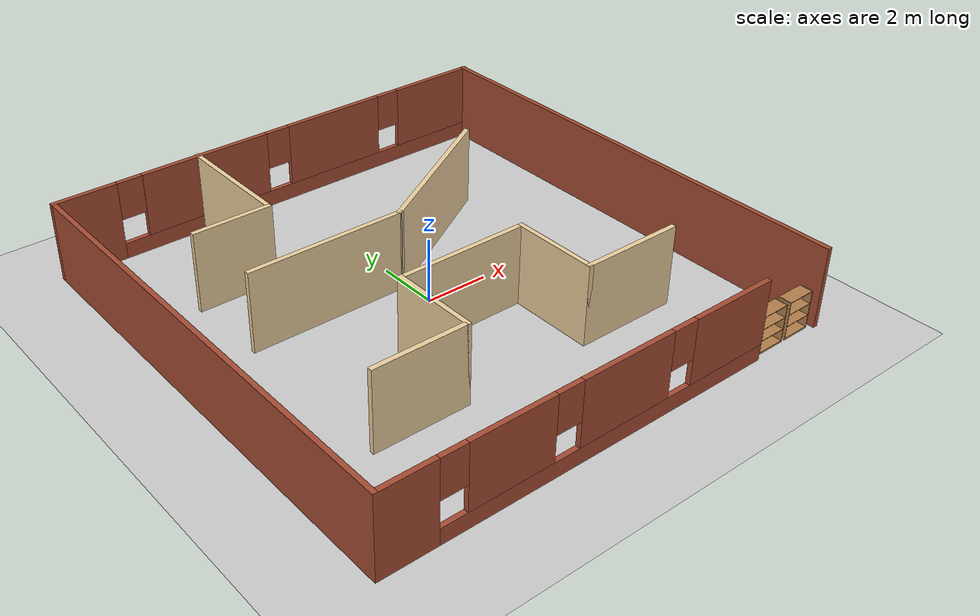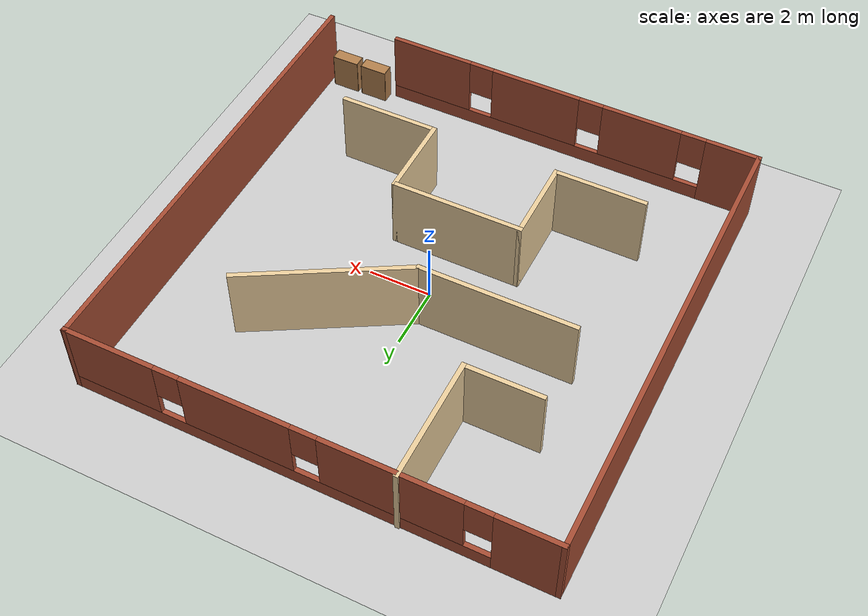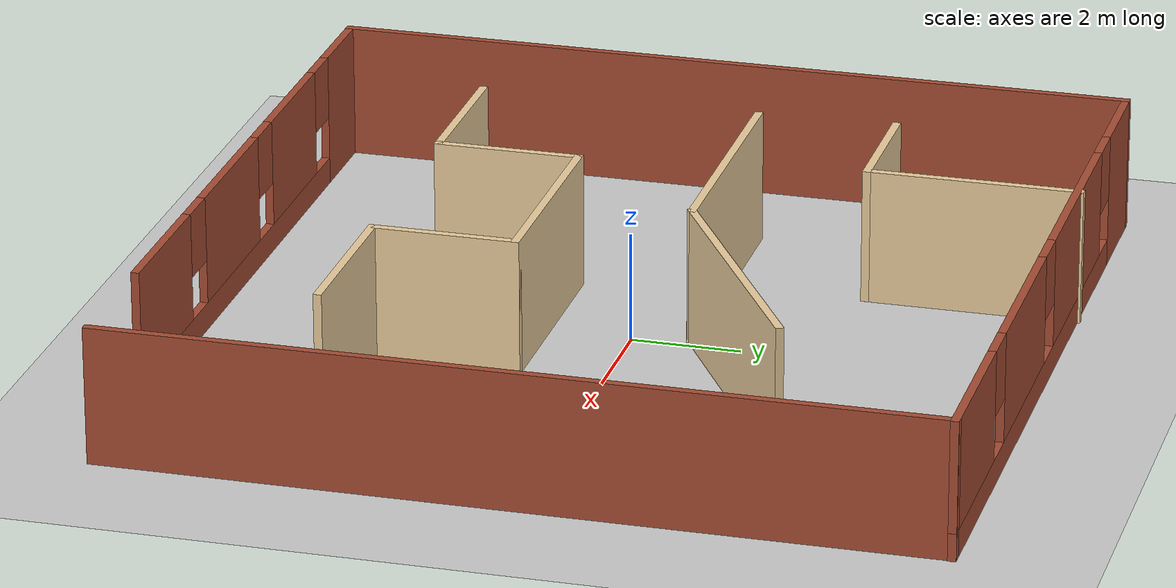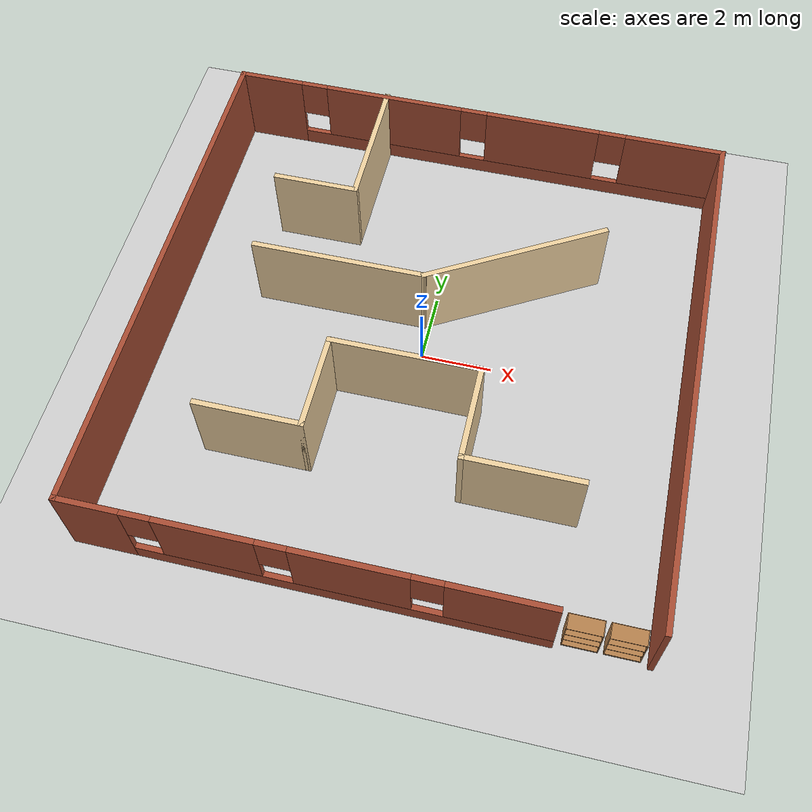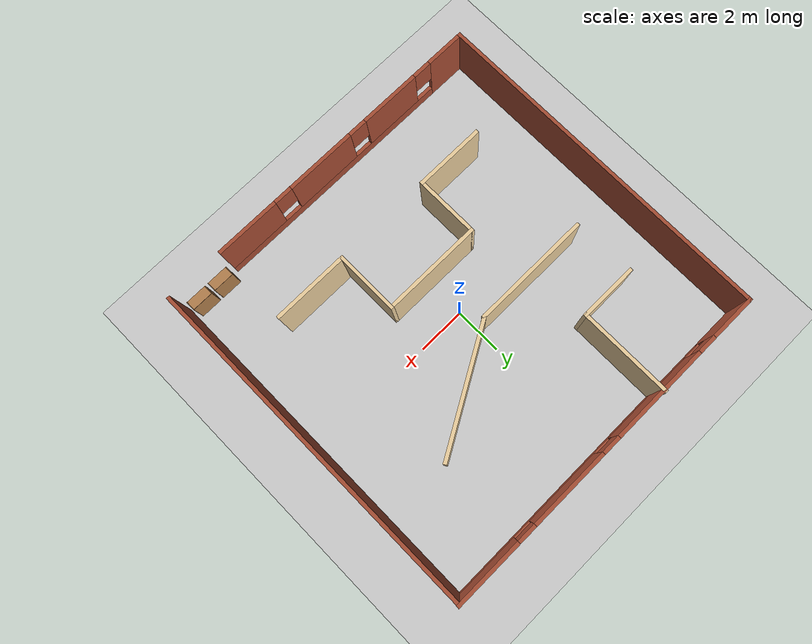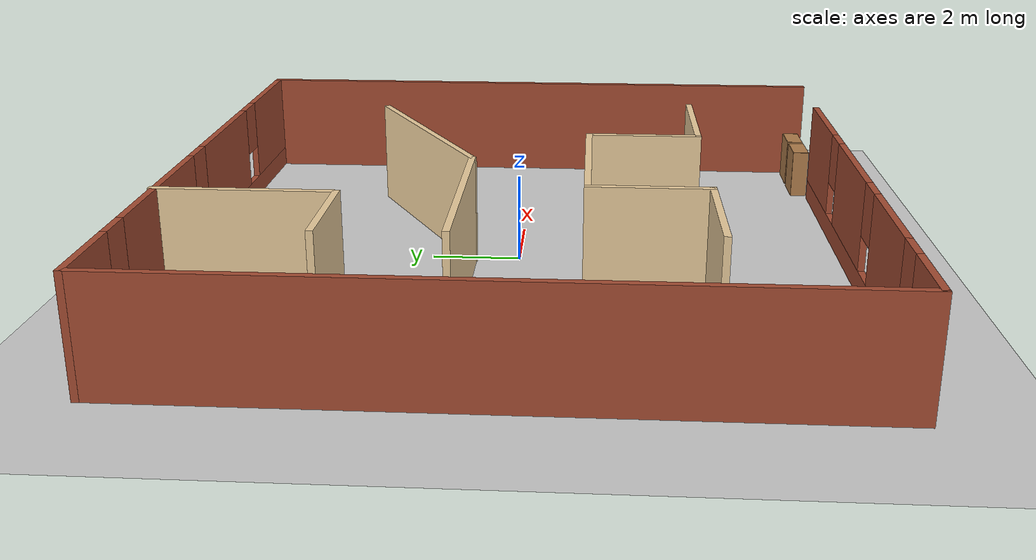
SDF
<sdf version="1.7">
 <world name="default">
  <model name="ground_plane">
   <static>1</static>
   <link name="link">
    <collision name="collision">
     <geometry><plane><normal>0 0 1</normal><size>100 100</size></plane></geometry>
     <surface>
      <contact><collide_bitmask>65535</collide_bitmask></contact>
      <friction><ode><mu>100</mu><mu2>50</mu2></ode></friction>
     </surface>
    </collision>
    <visual name="visual">
     <cast_shadows>0</cast_shadows>
     <geometry><plane><normal>0 0 1</normal><size>100 100</size></plane></geometry>
     <material>
      <script><uri>file://media/materials/scripts/gazebo.material</uri><name>Gazebo/Grey</name></script>
     </material>
    </visual>
   </link>
  </model>
  <model name="bookshelf">
   <static>1</static>
   <link name="link">
    <inertial><mass>1</mass></inertial>
    <collision name="back">
     <pose>0 0.005 0.6 0 -0 0</pose>
     <geometry><box><size>0.9 0.01 1.2</size></box></geometry>
    </collision>
    <visual name="visual1">
     <pose>0 0.005 0.6 0 -0 0</pose>
     <geometry><box><size>0.9 0.01 1.2</size></box></geometry>
     <material>
      <script><uri>file://media/materials/scripts/gazebo.material</uri><name>Gazebo/Wood</name></script>
     </material>
    </visual>
    <collision name="left_side">
     <pose>0.45 -0.195 0.6 0 -0 0</pose>
     <geometry><box><size>0.02 0.4 1.2</size></box></geometry>
    </collision>
    <visual name="visual2">
     <pose>0.45 -0.195 0.6 0 -0 0</pose>
     <geometry><box><size>0.02 0.4 1.2</size></box></geometry>
     <material>
      <script><uri>file://media/materials/scripts/gazebo.material</uri><name>Gazebo/Wood</name></script>
     </material>
    </visual>
    <collision name="right_side">
     <pose>-0.45 -0.195 0.6 0 -0 0</pose>
     <geometry><box><size>0.02 0.4 1.2</size></box></geometry>
    </collision>
    <visual name="visual3">
     <pose>-0.45 -0.195 0.6 0 -0 0</pose>
     <geometry><box><size>0.02 0.4 1.2</size></box></geometry>
     <material>
      <script><uri>file://media/materials/scripts/gazebo.material</uri><name>Gazebo/Wood</name></script>
     </material>
    </visual>
    <collision name="bottom">
     <pose>0 -0.195 0.03 0 -0 0</pose>
     <geometry><box><size>0.88 0.4 0.06</size></box></geometry>
    </collision>
    <visual name="visual4">
     <pose>0 -0.195 0.03 0 -0 0</pose>
     <geometry><box><size>0.88 0.4 0.06</size></box></geometry>
     <material>
      <script><uri>file://media/materials/scripts/gazebo.material</uri><name>Gazebo/Wood</name></script>
     </material>
    </visual>
    <collision name="top">
     <pose>0 -0.195 1.19 0 -0 0</pose>
     <geometry><box><size>0.88 0.4 0.02</size></box></geometry>
    </collision>
    <visual name="visual5">
     <pose>0 -0.195 1.19 0 -0 0</pose>
     <geometry><box><size>0.88 0.4 0.02</size></box></geometry>
     <material>
      <script><uri>file://media/materials/scripts/gazebo.material</uri><name>Gazebo/Wood</name></script>
     </material>
    </visual>
    <collision name="low_shelf">
     <pose>0 -0.195 0.43 0 -0 0</pose>
     <geometry><box><size>0.88 0.4 0.02</size></box></geometry>
    </collision>
    <visual name="visual6">
     <pose>0 -0.195 0.43 0 -0 0</pose>
     <geometry><box><size>0.88 0.4 0.02</size></box></geometry>
     <material>
      <script><uri>file://media/materials/scripts/gazebo.material</uri><name>Gazebo/Wood</name></script>
     </material>
    </visual>
    <collision name="high_shelf">
     <pose>0 -0.195 0.8 0 -0 0</pose>
     <geometry><box><size>0.88 0.4 0.02</size></box></geometry>
    </collision>
    <visual name="visual7">
     <pose>0 -0.195 0.8 0 -0 0</pose>
     <geometry><box><size>0.88 0.4 0.02</size></box></geometry>
     <material>
      <script><uri>file://media/materials/scripts/gazebo.material</uri><name>Gazebo/Wood</name></script>
     </material>
    </visual>
   </link>
   <pose>5.65 -7 0 0 -0 0</pose>
  </model>
  <model name="bookshelf_0">
   <static>1</static>
   <link name="link">
    <inertial><mass>1</mass></inertial>
    <collision name="back">
     <pose>0 0.005 0.6 0 -0 0</pose>
     <geometry><box><size>0.9 0.01 1.2</size></box></geometry>
    </collision>
    <visual name="visual1">
     <pose>0 0.005 0.6 0 -0 0</pose>
     <geometry><box><size>0.9 0.01 1.2</size></box></geometry>
     <material>
      <script><uri>file://media/materials/scripts/gazebo.material</uri><name>Gazebo/Wood</name></script>
     </material>
    </visual>
    <collision name="left_side">
     <pose>0.45 -0.195 0.6 0 -0 0</pose>
     <geometry><box><size>0.02 0.4 1.2</size></box></geometry>
    </collision>
    <visual name="visual2">
     <pose>0.45 -0.195 0.6 0 -0 0</pose>
     <geometry><box><size>0.02 0.4 1.2</size></box></geometry>
     <material>
      <script><uri>file://media/materials/scripts/gazebo.material</uri><name>Gazebo/Wood</name></script>
     </material>
    </visual>
    <collision name="right_side">
     <pose>-0.45 -0.195 0.6 0 -0 0</pose>
     <geometry><box><size>0.02 0.4 1.2</size></box></geometry>
    </collision>
    <visual name="visual3">
     <pose>-0.45 -0.195 0.6 0 -0 0</pose>
     <geometry><box><size>0.02 0.4 1.2</size></box></geometry>
     <material>
      <script><uri>file://media/materials/scripts/gazebo.material</uri><name>Gazebo/Wood</name></script>
     </material>
    </visual>
    <collision name="bottom">
     <pose>0 -0.195 0.03 0 -0 0</pose>
     <geometry><box><size>0.88 0.4 0.06</size></box></geometry>
    </collision>
    <visual name="visual4">
     <pose>0 -0.195 0.03 0 -0 0</pose>
     <geometry><box><size>0.88 0.4 0.06</size></box></geometry>
     <material>
      <script><uri>file://media/materials/scripts/gazebo.material</uri><name>Gazebo/Wood</name></script>
     </material>
    </visual>
    <collision name="top">
     <pose>0 -0.195 1.19 0 -0 0</pose>
     <geometry><box><size>0.88 0.4 0.02</size></box></geometry>
    </collision>
    <visual name="visual5">
     <pose>0 -0.195 1.19 0 -0 0</pose>
     <geometry><box><size>0.88 0.4 0.02</size></box></geometry>
     <material>
      <script><uri>file://media/materials/scripts/gazebo.material</uri><name>Gazebo/Wood</name></script>
     </material>
    </visual>
    <collision name="low_shelf">
     <pose>0 -0.195 0.43 0 -0 0</pose>
     <geometry><box><size>0.88 0.4 0.02</size></box></geometry>
    </collision>
    <visual name="visual6">
     <pose>0 -0.195 0.43 0 -0 0</pose>
     <geometry><box><size>0.88 0.4 0.02</size></box></geometry>
     <material>
      <script><uri>file://media/materials/scripts/gazebo.material</uri><name>Gazebo/Wood</name></script>
     </material>
    </visual>
    <collision name="high_shelf">
     <pose>0 -0.195 0.8 0 -0 0</pose>
     <geometry><box><size>0.88 0.4 0.02</size></box></geometry>
    </collision>
    <visual name="visual7">
     <pose>0 -0.195 0.8 0 -0 0</pose>
     <geometry><box><size>0.88 0.4 0.02</size></box></geometry>
     <material>
      <script><uri>file://media/materials/scripts/gazebo.material</uri><name>Gazebo/Wood</name></script>
     </material>
    </visual>
   </link>
   <pose>6.7 -7 0 0 -0 0</pose>
  </model>
  <model name="gMaze4">
   <link name="Wall_0">
    <pose>0 7.40084 0 0 -0 0</pose>
    <visual name="Wall_0_Visual_0">
     <pose>-6.50945 0 1.25 0 -0 0</pose>
     <geometry><box><size>1.98109 0.15 2.5</size></box></geometry>
     <material>
      <script><uri>file://media/materials/scripts/gazebo.material</uri><name>Gazebo/Bricks</name></script>
      <ambient>1 1 1 1</ambient>
     </material>
     <meta><layer>0</layer></meta>
    </visual>
    <collision name="Wall_0_Collision_0">
     <geometry><box><size>1.98109 0.15 2.5</size></box></geometry>
     <pose>-6.50945 0 1.25 0 -0 0</pose>
    </collision>
    <visual name="Wall_0_Visual_1">
     <pose>0.990545 0 0.25 0 -0 0</pose>
     <geometry><box><size>13.0189 0.15 0.5</size></box></geometry>
     <material>
      <script><uri>file://media/materials/scripts/gazebo.material</uri><name>Gazebo/Bricks</name></script>
      <ambient>1 1 1 1</ambient>
     </material>
     <meta><layer>0</layer></meta>
    </visual>
    <collision name="Wall_0_Collision_1">
     <geometry><box><size>13.0189 0.15 0.5</size></box></geometry>
     <pose>0.990545 0 0.25 0 -0 0</pose>
    </collision>
    <visual name="Wall_0_Visual_2">
     <pose>-2.60363 0 1.5 0 -0 0</pose>
     <geometry><box><size>4.23056 0.15 2</size></box></geometry>
     <material>
      <script><uri>file://media/materials/scripts/gazebo.material</uri><name>Gazebo/Bricks</name></script>
      <ambient>1 1 1 1</ambient>
     </material>
     <meta><layer>0</layer></meta>
    </visual>
    <collision name="Wall_0_Collision_2">
     <geometry><box><size>4.23056 0.15 2</size></box></geometry>
     <pose>-2.60363 0 1.5 0 -0 0</pose>
    </collision>
    <visual name="Wall_0_Visual_3">
     <pose>2.02238 0 1.5 0 -0 0</pose>
     <geometry><box><size>3.42145 0.15 2</size></box></geometry>
     <material>
      <script><uri>file://media/materials/scripts/gazebo.material</uri><name>Gazebo/Bricks</name></script>
      <ambient>1 1 1 1</ambient>
     </material>
     <meta><layer>0</layer></meta>
    </visual>
    <collision name="Wall_0_Collision_3">
     <geometry><box><size>3.42145 0.15 2</size></box></geometry>
     <pose>2.02238 0 1.5 0 -0 0</pose>
    </collision>
    <visual name="Wall_0_Visual_4">
     <pose>6.01655 0 1.5 0 -0 0</pose>
     <geometry><box><size>2.9669 0.15 2</size></box></geometry>
     <material>
      <script><uri>file://media/materials/scripts/gazebo.material</uri><name>Gazebo/Bricks</name></script>
      <ambient>1 1 1 1</ambient>
     </material>
     <meta><layer>0</layer></meta>
    </visual>
    <collision name="Wall_0_Collision_4">
     <geometry><box><size>2.9669 0.15 2</size></box></geometry>
     <pose>6.01655 0 1.5 0 -0 0</pose>
    </collision>
    <visual name="Wall_0_Visual_5">
     <pose>-5.11891 0 1.9 0 -0 0</pose>
     <geometry><box><size>0.8 0.15 1.2</size></box></geometry>
     <material>
      <script><uri>file://media/materials/scripts/gazebo.material</uri><name>Gazebo/Bricks</name></script>
      <ambient>1 1 1 1</ambient>
     </material>
     <meta><layer>0</layer></meta>
    </visual>
    <collision name="Wall_0_Collision_5">
     <geometry><box><size>0.8 0.15 1.2</size></box></geometry>
     <pose>-5.11891 0 1.9 0 -0 0</pose>
    </collision>
    <visual name="Wall_0_Visual_6">
     <pose>-0.088347 0 1.9 0 -0 0</pose>
     <geometry><box><size>0.8 0.15 1.2</size></box></geometry>
     <material>
      <script><uri>file://media/materials/scripts/gazebo.material</uri><name>Gazebo/Bricks</name></script>
      <ambient>1 1 1 1</ambient>
     </material>
     <meta><layer>0</layer></meta>
    </visual>
    <collision name="Wall_0_Collision_6">
     <geometry><box><size>0.8 0.15 1.2</size></box></geometry>
     <pose>-0.088347 0 1.9 0 -0 0</pose>
    </collision>
    <visual name="Wall_0_Visual_7">
     <pose>4.1331 0 1.9 0 -0 0</pose>
     <geometry><box><size>0.8 0.15 1.2</size></box></geometry>
     <material>
      <script><uri>file://media/materials/scripts/gazebo.material</uri><name>Gazebo/Bricks</name></script>
      <ambient>1 1 1 1</ambient>
     </material>
     <meta><layer>0</layer></meta>
    </visual>
    <collision name="Wall_0_Collision_7">
     <geometry><box><size>0.8 0.15 1.2</size></box></geometry>
     <pose>4.1331 0 1.9 0 -0 0</pose>
    </collision>
   </link>
   <link name="Wall_1">
    <collision name="Wall_1_Collision">
     <geometry><box><size>15 0.15 2.5</size></box></geometry>
     <pose>0 0 1.25 0 -0 0</pose>
    </collision>
    <visual name="Wall_1_Visual">
     <pose>0 0 1.25 0 -0 0</pose>
     <geometry><box><size>15 0.15 2.5</size></box></geometry>
     <material>
      <script><uri>file://media/materials/scripts/gazebo.material</uri><name>Gazebo/Bricks</name></script>
      <ambient>1 1 1 1</ambient>
     </material>
     <meta><layer>0</layer></meta>
    </visual>
    <pose>7.40489 -0.024156 0 0 -0 -1.5708</pose>
   </link>
   <link name="Wall_23">
    <collision name="Wall_23_Collision">
     <geometry><box><size>4 0.15 2.5</size></box></geometry>
     <pose>0 0 1.25 0 -0 0</pose>
    </collision>
    <visual name="Wall_23_Visual">
     <pose>0 0 1.25 0 -0 0</pose>
     <geometry><box><size>4 0.15 2.5</size></box></geometry>
     <material>
      <script><uri>file://media/materials/scripts/gazebo.material</uri><name>Gazebo/Grey</name></script>
      <ambient>0.921569 0.807843 0.615686 1</ambient>
     </material>
     <meta><layer>0</layer></meta>
    </visual>
    <pose>-2.82414 5.52416 0 0 -0 -1.5708</pose>
   </link>
   <link name="Wall_24">
    <collision name="Wall_24_Collision">
     <geometry><box><size>2.5 0.15 2.5</size></box></geometry>
     <pose>0 0 1.25 0 -0 0</pose>
    </collision>
    <visual name="Wall_24_Visual">
     <pose>0 0 1.25 0 -0 0</pose>
     <geometry><box><size>2.5 0.15 2.5</size></box></geometry>
     <material>
      <script><uri>file://media/materials/scripts/gazebo.material</uri><name>Gazebo/Grey</name></script>
      <ambient>0.921569 0.807843 0.615686 1</ambient>
     </material>
     <meta><layer>0</layer></meta>
    </visual>
    <pose>-3.99914 3.59916 0 0 -0 3.14159</pose>
   </link>
   <link name="Wall_26">
    <collision name="Wall_26_Collision">
     <geometry><box><size>3 0.15 2.5</size></box></geometry>
     <pose>0 0 1.25 0 -0 0</pose>
    </collision>
    <visual name="Wall_26_Visual">
     <pose>0 0 1.25 0 -0 0</pose>
     <geometry><box><size>3 0.15 2.5</size></box></geometry>
     <material>
      <script><uri>file://media/materials/scripts/gazebo.material</uri><name>Gazebo/Grey</name></script>
      <ambient>0.921569 0.807843 0.615686 1</ambient>
     </material>
     <meta><layer>0</layer></meta>
    </visual>
    <pose>-3.58837 -4.15073 0 0 -0 0</pose>
   </link>
   <link name="Wall_27">
    <collision name="Wall_27_Collision">
     <geometry><box><size>2.75 0.15 2.5</size></box></geometry>
     <pose>0 0 1.25 0 -0 0</pose>
    </collision>
    <visual name="Wall_27_Visual">
     <pose>0 0 1.25 0 -0 0</pose>
     <geometry><box><size>2.75 0.15 2.5</size></box></geometry>
     <material>
      <script><uri>file://media/materials/scripts/gazebo.material</uri><name>Gazebo/Grey</name></script>
      <ambient>0.921569 0.807843 0.615686 1</ambient>
     </material>
     <meta><layer>0</layer></meta>
    </visual>
    <pose>-2.16337 -2.85073 0 0 -0 1.5708</pose>
   </link>
   <link name="Wall_28">
    <collision name="Wall_28_Collision">
     <geometry><box><size>4.25 0.15 2.5</size></box></geometry>
     <pose>0 0 1.25 0 -0 0</pose>
    </collision>
    <visual name="Wall_28_Visual">
     <pose>0 0 1.25 0 -0 0</pose>
     <geometry><box><size>4.25 0.15 2.5</size></box></geometry>
     <material>
      <script><uri>file://media/materials/scripts/gazebo.material</uri><name>Gazebo/Grey</name></script>
      <ambient>0.921569 0.807843 0.615686 1</ambient>
     </material>
     <meta><layer>0</layer></meta>
    </visual>
    <pose>-0.113373 -1.55073 0 0 -0 0</pose>
   </link>
   <link name="Wall_29">
    <collision name="Wall_29_Collision">
     <geometry><box><size>2.75 0.15 2.5</size></box></geometry>
     <pose>0 0 1.25 0 -0 0</pose>
    </collision>
    <visual name="Wall_29_Visual">
     <pose>0 0 1.25 0 -0 0</pose>
     <geometry><box><size>2.75 0.15 2.5</size></box></geometry>
     <material>
      <script><uri>file://media/materials/scripts/gazebo.material</uri><name>Gazebo/Grey</name></script>
      <ambient>0.921569 0.807843 0.615686 1</ambient>
     </material>
     <meta><layer>0</layer></meta>
    </visual>
    <pose>1.93663 -2.85073 0 0 -0 -1.5708</pose>
   </link>
   <link name="Wall_3">
    <collision name="Wall_3_Collision">
     <geometry><box><size>15 0.15 2.5</size></box></geometry>
     <pose>0 0 1.25 0 -0 0</pose>
    </collision>
    <visual name="Wall_3_Visual">
     <pose>0 0 1.25 0 -0 0</pose>
     <geometry><box><size>15 0.15 2.5</size></box></geometry>
     <material>
      <script><uri>file://media/materials/scripts/gazebo.material</uri><name>Gazebo/Bricks</name></script>
      <ambient>1 1 1 1</ambient>
     </material>
     <meta><layer>0</layer></meta>
    </visual>
    <pose>-7.425 -0.024156 0 0 -0 -1.5708</pose>
   </link>
   <link name="Wall_30">
    <collision name="Wall_30_Collision">
     <geometry><box><size>3.25 0.15 2.5</size></box></geometry>
     <pose>0 0 1.25 0 -0 0</pose>
    </collision>
    <visual name="Wall_30_Visual">
     <pose>0 0 1.25 0 -0 0</pose>
     <geometry><box><size>3.25 0.15 2.5</size></box></geometry>
     <material>
      <script><uri>file://media/materials/scripts/gazebo.material</uri><name>Gazebo/Grey</name></script>
      <ambient>0.921569 0.807843 0.615686 1</ambient>
     </material>
     <meta><layer>0</layer></meta>
    </visual>
    <pose>3.48663 -4.15073 0 0 -0 0</pose>
   </link>
   <link name="Wall_32">
    <collision name="Wall_32_Collision">
     <geometry><box><size>5 0.15 2.5</size></box></geometry>
     <pose>0 0 1.25 0 -0 0</pose>
    </collision>
    <visual name="Wall_32_Visual">
     <pose>0 0 1.25 0 -0 0</pose>
     <geometry><box><size>5 0.15 2.5</size></box></geometry>
     <material>
      <script><uri>file://media/materials/scripts/gazebo.material</uri><name>Gazebo/Grey</name></script>
      <ambient>0.921569 0.807843 0.615686 1</ambient>
     </material>
     <meta><layer>0</layer></meta>
    </visual>
    <pose>-2.62355 1.05572 0 0 -0 0</pose>
   </link>
   <link name="Wall_33">
    <collision name="Wall_33_Collision">
     <geometry><box><size>5.5 0.15 2.5</size></box></geometry>
     <pose>0 0 1.25 0 -0 0</pose>
    </collision>
    <visual name="Wall_33_Visual">
     <pose>0 0 1.25 0 -0 0</pose>
     <geometry><box><size>5.5 0.15 2.5</size></box></geometry>
     <material>
      <script><uri>file://media/materials/scripts/gazebo.material</uri><name>Gazebo/Grey</name></script>
      <ambient>0.921569 0.807843 0.615686 1</ambient>
     </material>
     <meta><layer>0</layer></meta>
    </visual>
    <pose>2.11807 2.39322 0 0 -0 0.523599</pose>
   </link>
   <link name="Wall_4">
    <pose>-1.25 -7.44916 0 0 -0 0</pose>
    <visual name="Wall_4_Visual_0">
     <pose>-5.37558 0 1.25 0 -0 0</pose>
     <geometry><box><size>1.74884 0.15 2.5</size></box></geometry>
     <material>
      <script><uri>file://media/materials/scripts/gazebo.material</uri><name>Gazebo/Bricks</name></script>
      <ambient>1 1 1 1</ambient>
     </material>
     <meta><layer>0</layer></meta>
    </visual>
    <collision name="Wall_4_Collision_0">
     <geometry><box><size>1.74884 0.15 2.5</size></box></geometry>
     <pose>-5.37558 0 1.25 0 -0 0</pose>
    </collision>
    <visual name="Wall_4_Visual_1">
     <pose>0.87442 0 0.25 0 -0 0</pose>
     <geometry><box><size>10.7512 0.15 0.5</size></box></geometry>
     <material>
      <script><uri>file://media/materials/scripts/gazebo.material</uri><name>Gazebo/Bricks</name></script>
      <ambient>1 1 1 1</ambient>
     </material>
     <meta><layer>0</layer></meta>
    </visual>
    <collision name="Wall_4_Collision_1">
     <geometry><box><size>10.7512 0.15 0.5</size></box></geometry>
     <pose>0.87442 0 0.25 0 -0 0</pose>
    </collision>
    <visual name="Wall_4_Visual_2">
     <pose>-2.40199 0 1.5 0 -0 0</pose>
     <geometry><box><size>2.59834 0.15 2</size></box></geometry>
     <material>
      <script><uri>file://media/materials/scripts/gazebo.material</uri><name>Gazebo/Bricks</name></script>
      <ambient>1 1 1 1</ambient>
     </material>
     <meta><layer>0</layer></meta>
    </visual>
    <collision name="Wall_4_Collision_2">
     <geometry><box><size>2.59834 0.15 2</size></box></geometry>
     <pose>-2.40199 0 1.5 0 -0 0</pose>
    </collision>
    <visual name="Wall_4_Visual_3">
     <pose>1.19683 0 1.5 0 -0 0</pose>
     <geometry><box><size>2.99931 0.15 2</size></box></geometry>
     <material>
      <script><uri>file://media/materials/scripts/gazebo.material</uri><name>Gazebo/Bricks</name></script>
      <ambient>1 1 1 1</ambient>
     </material>
     <meta><layer>0</layer></meta>
    </visual>
    <collision name="Wall_4_Collision_3">
     <geometry><box><size>2.99931 0.15 2</size></box></geometry>
     <pose>1.19683 0 1.5 0 -0 0</pose>
    </collision>
    <visual name="Wall_4_Visual_4">
     <pose>4.87324 0 1.5 0 -0 0</pose>
     <geometry><box><size>2.75352 0.15 2</size></box></geometry>
     <material>
      <script><uri>file://media/materials/scripts/gazebo.material</uri><name>Gazebo/Bricks</name></script>
      <ambient>1 1 1 1</ambient>
     </material>
     <meta><layer>0</layer></meta>
    </visual>
    <collision name="Wall_4_Collision_4">
     <geometry><box><size>2.75352 0.15 2</size></box></geometry>
     <pose>4.87324 0 1.5 0 -0 0</pose>
    </collision>
    <visual name="Wall_4_Visual_5">
     <pose>-4.10116 0 1.9 0 -0 0</pose>
     <geometry><box><size>0.8 0.15 1.2</size></box></geometry>
     <material>
      <script><uri>file://media/materials/scripts/gazebo.material</uri><name>Gazebo/Bricks</name></script>
      <ambient>1 1 1 1</ambient>
     </material>
     <meta><layer>0</layer></meta>
    </visual>
    <collision name="Wall_4_Collision_5">
     <geometry><box><size>0.8 0.15 1.2</size></box></geometry>
     <pose>-4.10116 0 1.9 0 -0 0</pose>
    </collision>
    <visual name="Wall_4_Visual_6">
     <pose>-0.702821 0 1.9 0 -0 0</pose>
     <geometry><box><size>0.8 0.15 1.2</size></box></geometry>
     <material>
      <script><uri>file://media/materials/scripts/gazebo.material</uri><name>Gazebo/Bricks</name></script>
      <ambient>1 1 1 1</ambient>
     </material>
     <meta><layer>0</layer></meta>
    </visual>
    <collision name="Wall_4_Collision_6">
     <geometry><box><size>0.8 0.15 1.2</size></box></geometry>
     <pose>-0.702821 0 1.9 0 -0 0</pose>
    </collision>
    <visual name="Wall_4_Visual_7">
     <pose>3.09648 0 1.9 0 -0 0</pose>
     <geometry><box><size>0.8 0.15 1.2</size></box></geometry>
     <material>
      <script><uri>file://media/materials/scripts/gazebo.material</uri><name>Gazebo/Bricks</name></script>
      <ambient>1 1 1 1</ambient>
     </material>
     <meta><layer>0</layer></meta>
    </visual>
    <collision name="Wall_4_Collision_7">
     <geometry><box><size>0.8 0.15 1.2</size></box></geometry>
     <pose>3.09648 0 1.9 0 -0 0</pose>
    </collision>
   </link>
   <static>1</static>
  </model>
 </world>
</sdf>
